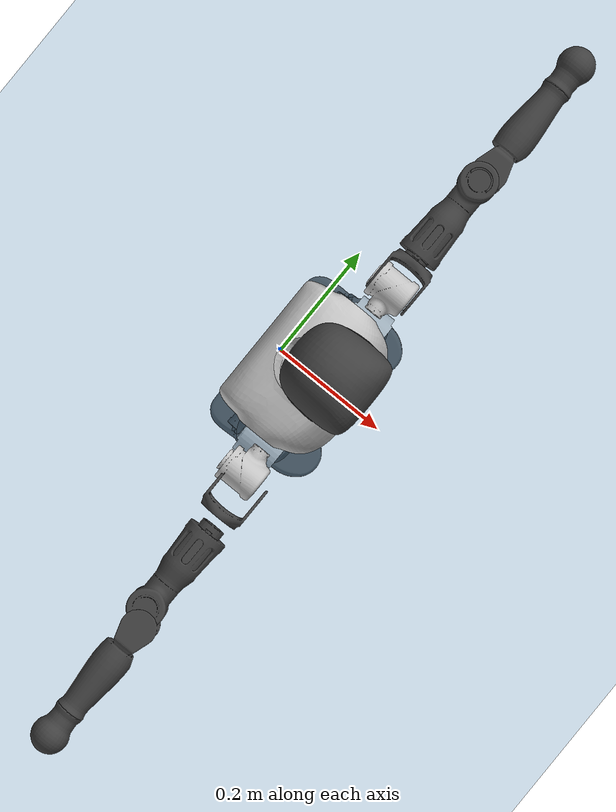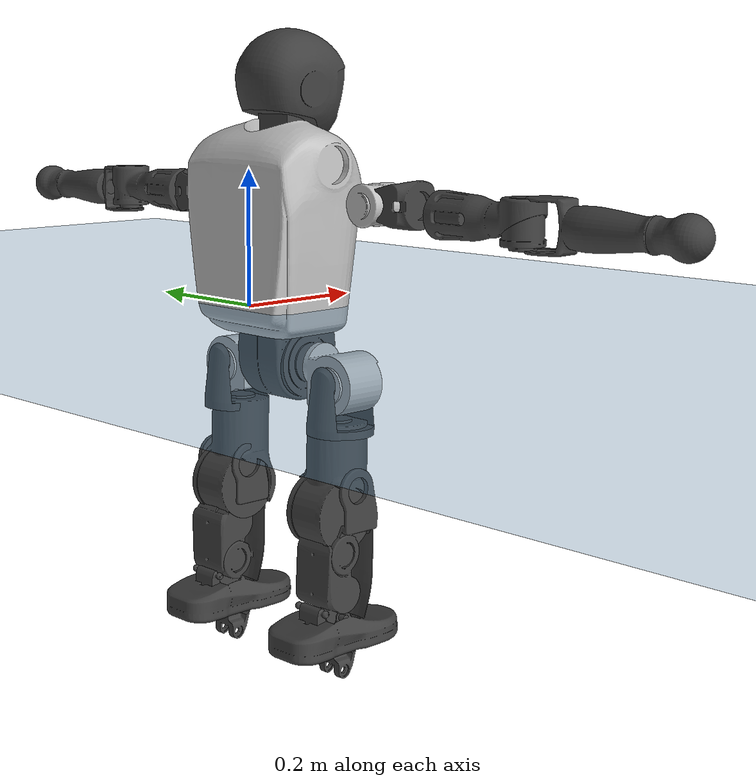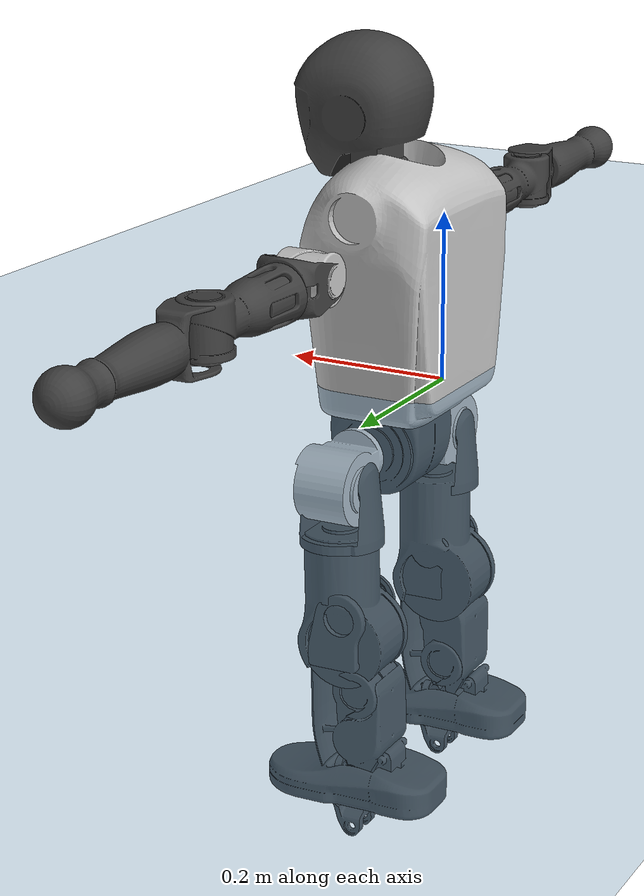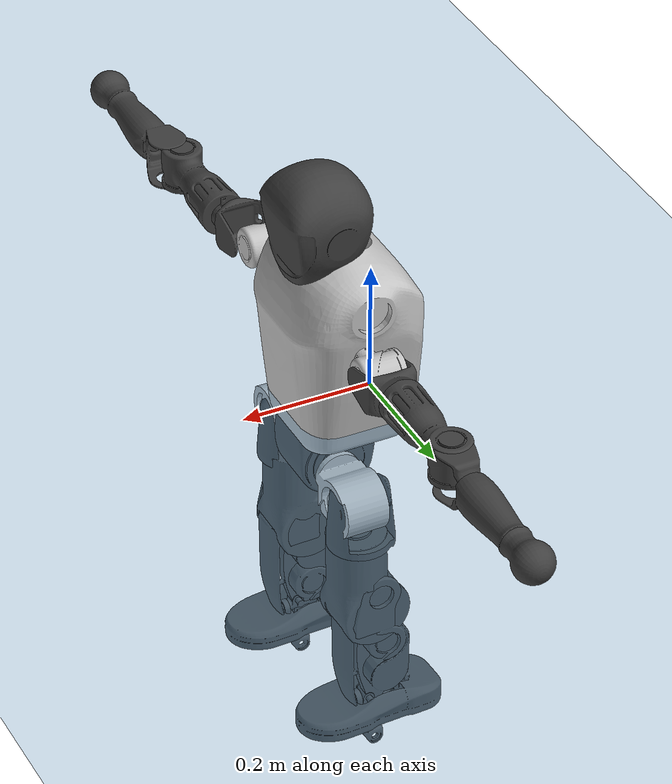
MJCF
<mujoco model="T1">
  <compiler angle="radian" assetdir="assets" balanceinertia="true" inertiafromgeom="false"/>

  <option timestep="0.005" density="1.2" viscosity="2e-05"/>

  <size nkey="1"/>

  <visual>
    <quality shadowsize="8192"/>
    <map shadowclip="0.5"/>
  </visual>

  <default>
    <default class="/">
      <joint armature="0.01" damping="0.01" frictionloss="0.1"/>
      <geom contype="0" conaffinity="0" group="1" solref="-1000 -80"/>
      <site size="0.01 0.005 0.005" group="5"/>
      <general forcelimited="true" biastype="affine" gainprm="25" biasprm="0 -25 -0.6"/>
      <default class="t1">
        <geom rgba="0.25 0.25 0.25 1"/>
        <default class="visual">
          <geom type="mesh" group="2"/>
        </default>
        <default class="collision">
          <geom group="3"/>
        </default>
        <default class="foot">
          <geom size="0.1115 0.05 0.015" type="box" condim="6" group="4" priority="1" solimp="0.015 1 0.015"/>
        </default>
        <default class="reward_collision_sphere">
          <geom group="5" rgba="1 0 0 1"/>
        </default>
      </default>
    </default>
  </default>

  <asset>
    <texture type="skybox" colorspace="auto" name="//unnamed_texture_0" builtin="gradient" rgb1="0.95 0.95 0.95" rgb2="0.95 0.95 0.95" width="100" height="600"/>
    <texture type="2d" colorspace="auto" name="texplane" builtin="checker" rgb1="0.345 0.575 0.748" rgb2="0.345 0.575 0.748" markrgb="1 1 1" width="512" height="512"/>
    <material name="MatPlane" class="/" texture="texplane" texuniform="true" texrepeat="2 2" specular="0.9"/>
    <mesh name="Trunk" class="/" file="Trunk.stl"/>
    <mesh name="H1" class="/" file="H1.stl"/>
    <mesh name="H2" class="/" file="H2.stl"/>
    <mesh name="AL1" class="/" file="AL1.stl"/>
    <mesh name="AL2" class="/" file="AL2.stl"/>
    <mesh name="AL3" class="/" file="AL3.stl"/>
    <mesh name="left_hand_link" class="/" file="left_hand_link.stl"/>
    <mesh name="AR1" class="/" file="AR1.stl"/>
    <mesh name="AR2" class="/" file="AR2.stl"/>
    <mesh name="AR3" class="/" file="AR3.stl"/>
    <mesh name="right_hand_link" class="/" file="right_hand_link.stl"/>
    <mesh name="Waist" class="/" file="Waist.stl"/>
    <mesh name="Hip_Pitch_Left" class="/" file="Hip_Pitch_Left.stl"/>
    <mesh name="Hip_Roll_Left" class="/" file="Hip_Roll_Left.stl"/>
    <mesh name="Hip_Yaw_Left" class="/" file="Hip_Yaw_Left.stl"/>
    <mesh name="Shank_Left" class="/" file="Shank_Left.stl"/>
    <mesh name="Ankle_Cross_Left" class="/" file="Ankle_Cross_Left.stl"/>
    <mesh name="left_foot_link" class="/" file="left_foot_link.stl"/>
    <mesh name="Hip_Pitch_Right" class="/" file="Hip_Pitch_Right.stl"/>
    <mesh name="Hip_Roll_Right" class="/" file="Hip_Roll_Right.stl"/>
    <mesh name="Hip_Yaw_Right" class="/" file="Hip_Yaw_Right.stl"/>
    <mesh name="Shank_Right" class="/" file="Shank_Right.stl"/>
    <mesh name="Ankle_Cross_Right" class="/" file="Ankle_Cross_Right.stl"/>
    <mesh name="right_foot_link" class="/" file="right_foot_link.stl"/>
  </asset>

  <worldbody>
    <geom name="floor" class="/" size="100 100 0.125" type="plane" group="0" material="MatPlane"/>
    <light name="toplight_shadow" class="/" pos="0 0 5" dir="0.0990148 0.0990148 -0.990148" type="directional" ambient="0.04 0.04 0.04" diffuse="0.55 0.55 0.55" specular="0.12 0.12 0.12"/>
    <light name="toplight_fill" class="/" pos="0 0 5" dir="0.0990148 0.0990148 -0.990148" type="directional" castshadow="false" ambient="0.04 0.04 0.04" diffuse="0.3 0.3 0.3" specular="0.08 0.08 0.08"/>
    <body name="trunk" childclass="t1" pos="-0.00107995 -0.000175802 -0.00893709" quat="1 -5.08834e-05 -1.99439e-05 -5.45862e-05">
      <inertial pos="0.0673182 -0.00259136 0.0809319" quat="0.999471 0.0115316 -0.0269642 -0.0140794" mass="14.8528" diaginertia="0.248207 0.197267 0.0140951"/>
      <joint name="//unnamed_joint_0" type="free" armature="0" damping="0" frictionloss="0"/>
      <geom name="//unnamed_geom_1" class="visual" rgba="0.76 0.76 0.76 1" mesh="Trunk"/>
      <geom name="//unnamed_geom_2" class="collision" size="0.0790297 0.105373 0.158059" pos="0.0723881 0 0.089279" type="box"/>
      <geom name="//unnamed_geom_3" class="reward_collision_sphere" size="0.121179" pos="0.0723881 0 0.0743991"/>
      <geom name="//unnamed_geom_4" class="reward_collision_sphere" size="0.0158059" pos="0.0723881 0.102912 0"/>
      <geom name="//unnamed_geom_5" class="reward_collision_sphere" size="0.0158059" pos="0.0723881 -0.102912 0"/>
      <geom name="//unnamed_geom_6" class="reward_collision_sphere" size="0.0158059" pos="0.0723881 0.129548 0.133918"/>
      <geom name="//unnamed_geom_7" class="reward_collision_sphere" size="0.0158059" pos="0.0723881 -0.129548 0.133918"/>
      <site name="imu" pos="-0.0623129 0.0518108 -0.0206992" size="0.0105373"/>
      <camera name="track" pos="0 -2.42146 0" quat="0.707107 0.707107 0 0" mode="trackcom"/>
      <camera name="ego_camera" pos="0.147189 0 0.312476" quat="-0.5 -0.5 0.5 0.5"/>
      <body name="H1" pos="0.0789633 0.00602894 0.177093" quat="0.999996 8.38383e-07 -0.00157884 -0.00246315">
        <inertial pos="-0.00265159 -0.000778608 0.0439978" quat="0.755909 -0.0141771 0.00562023 0.654499" mass="0.493266" diaginertia="0.000543328 0.000568211 2.91372e-05"/>
        <joint name="AAHead_yaw" pos="0 0 0" axis="0.00957048 -0.0013059 0.999953" range="-1.65168 1.439" armature="0.00933047" damping="0.00898879" frictionloss="0.117243"/>
        <geom name="//unnamed_geom_8" class="visual" mesh="H1"/>
        <body name="H2" pos="0.000496102 0.0109866 0.0458603" quat="1 -0.000481823 -0.000557865 -0.000114624">
          <inertial pos="-0.00347122 -0.0100146 0.0662063" quat="0.9875 0.109283 -0.0884912 -0.0712012" mass="0.634511" diaginertia="0.00504873 0.0052734 0.000401472"/>
          <joint name="Head_pitch" pos="0 0 0" axis="0.00950117 -0.999949 -0.00337498" range="-1.22461 0.20635" armature="0.0160585" damping="0.0349316" frictionloss="0.107198"/>
          <geom name="//unnamed_geom_9" class="visual" mesh="H2"/>
          <geom name="//unnamed_geom_10" class="collision" size="0.0842984" pos="0.0120647 0 0.081839"/>
          <geom name="//unnamed_geom_11" class="reward_collision_sphere" size="0.0948357" pos="0.0241294 0 0.0743991"/>
        </body>
      </body>
      <body name="AL1" pos="0.0780474 0.131752 0.164582" quat="0.999997 0.000515003 0.000691563 -0.00223912">
        <inertial pos="-0.00545529 0.0494061 -0.0111434" quat="0.508632 0.48396 -0.490942 0.515803" mass="0.645703" diaginertia="0.00360047 0.00343295 6.44146e-05"/>
        <joint name="Left_Shoulder_Pitch" pos="0 0 0" axis="-0.00638014 0.999906 -0.0121158" stiffness="0.0488096" range="-3.09612 1.36367" armature="0.0100129" damping="0.0124883" frictionloss="0.0996675"/>
        <geom name="//unnamed_geom_12" class="visual" rgba="0.76 0.76 0.76 1" mesh="AL1"/>
        <body name="AL2" pos="0.00140895 0.0462355 -0.00211818" quat="0.99998 0.00205305 -0.00496415 -0.00322451">
          <inertial pos="0.000201556 0.0443455 0.00857751" quat="0.489982 0.511344 -0.48784 0.51035" mass="0.134601" diaginertia="0.000873153 0.000686613 3.50429e-05"/>
          <joint name="Left_Shoulder_Roll" pos="0 0 0" axis="-0.997728 0.0614182 -0.0276993" stiffness="0.0271743" range="-1.43974 1.7778" armature="0.007781" damping="0.064875" frictionloss="0.123851"/>
          <geom name="//unnamed_geom_13" class="visual" mesh="AL2"/>
          <body name="AL3" pos="-0.00358106 0.062658 -0.00132843" quat="0.999979 -0.00192151 0.00520733 0.00345417">
            <inertial pos="0.000453452 0.10423 0.00112677" quat="0.705964 0.706688 -0.0346212 -0.0317426" mass="1.02586" diaginertia="0.0280214 0.029063 0.00012962"/>
            <joint name="Left_Elbow_Pitch" pos="0 0 0" axis="-0.00880076 -0.999955 0.00364616" range="-2.1771 2.29371" armature="0.0112179" damping="0.00747231" frictionloss="0.113744"/>
            <geom name="//unnamed_geom_14" class="visual" mesh="AL3"/>
            <geom name="//unnamed_geom_15" class="collision" size="0.0316119 0.0790297" pos="0 0.0605365 0" quat="0.707105 0.707108 0 0" type="cylinder"/>
            <geom name="//unnamed_geom_16" class="reward_collision_sphere" size="0.0379343"/>
            <body name="left_hand_link" pos="0.0042788 0.166025 -0.00687941" quat="0.999984 -0.00400928 0.000818869 0.00389482">
              <inertial pos="0.000615383 0.137259 0.0111825" quat="0.72747 0.684758 0.0198321 0.038738" mass="0.452396" diaginertia="0.0226177 0.0250432 6.06217e-05"/>
              <joint name="Left_Elbow_Yaw" pos="0 0 0" axis="-0.00290506 0.0486051 0.998814" stiffness="8.26858e-05" range="-2.40323 -0.177615" armature="0.0100675" damping="0.0402359" frictionloss="0.039766"/>
              <geom name="//unnamed_geom_17" class="visual" mesh="left_hand_link"/>
              <geom name="//unnamed_geom_18" class="collision" size="0.0316119 0.0922014" pos="0 0.157395 0" quat="0.707105 0.707108 0 0" type="cylinder"/>
              <geom name="//unnamed_geom_19" class="reward_collision_sphere" size="0.0526865"/>
              <geom name="//unnamed_geom_20" class="reward_collision_sphere" size="0.0368805" pos="0 0.13318 0"/>
              <geom name="//unnamed_geom_21" class="reward_collision_sphere" size="0.0368805" pos="0 0.260307 0"/>
            </body>
          </body>
        </body>
      </body>
      <body name="AR1" pos="0.0792115 -0.136449 0.164263" quat="1 -0.000208108 0.000555756 -0.00016082">
        <inertial pos="0.000318037 -0.0528772 0.000155943" quat="0.507289 0.493276 -0.502928 0.496388" mass="0.578733" diaginertia="0.00353401 0.00342867 6.53259e-05"/>
        <joint name="Right_Shoulder_Pitch" pos="0 0 0" axis="0.00927053 -0.99962 -0.0259505" range="-1.45186 3.31516" armature="0.00983304" damping="0" frictionloss="0.0988368"/>
        <geom name="//unnamed_geom_22" class="visual" rgba="0.76 0.76 0.76 1" mesh="AR1"/>
        <body name="AR2" pos="0.0111234 -0.0654605 0.00243285" quat="0.999997 0.000496291 -0.00091504 -0.0024289">
          <inertial pos="0.010748 -0.0499604 0.00798348" quat="0.485967 0.490372 -0.523802 0.499002" mass="0.177229" diaginertia="0.0011069 0.000991864 3.94018e-05"/>
          <joint name="Right_Shoulder_Roll" pos="0 0 0" axis="-0.999929 0.00789811 -0.0088875" range="-1.84841 1.79702" armature="0.0113775" damping="0.00430394" frictionloss="0.162584"/>
          <geom name="//unnamed_geom_23" class="visual" mesh="AR2"/>
          <body name="AR3" pos="0.00549953 -0.0855664 -0.0103961" quat="1 2.54259e-05 -2.88494e-06 5.2317e-05">
            <inertial pos="6.0828e-05 -0.101 0.000867784" quat="0.703124 0.708071 0.0590756 0.0276093" mass="1.29557" diaginertia="0.0357531 0.0308809 0.000147204"/>
            <joint name="Right_Elbow_Pitch" pos="0 0 0" axis="0.00039348 1 -0.000454359" range="-2.3006 2.23245" armature="0.0110158" damping="0" frictionloss="0.0443902"/>
            <geom name="//unnamed_geom_24" class="visual" mesh="AR3"/>
            <geom name="//unnamed_geom_25" class="collision" size="0.0316119 0.0790297" pos="0 -0.0605365 0" quat="0.707105 0.707108 0 0" type="cylinder"/>
            <geom name="//unnamed_geom_26" class="reward_collision_sphere" size="0.0379343"/>
            <body name="right_hand_link" pos="0.0102907 -0.177099 -0.0028565" quat="0.999996 -0.0008931 -0.00206249 -0.00162992">
              <inertial pos="-0.000827697 -0.131988 -0.0106295" quat="0.699168 0.713031 -0.0520885 -0.00607581" mass="0.436402" diaginertia="0.0261108 0.0248177 5.57669e-05"/>
              <joint name="Right_Elbow_Yaw" pos="0 0 0" axis="0.00179748 -0.00107624 0.999998" range="0.177643 2.41096" armature="0.00347407" damping="0.0241855" frictionloss="0.10584"/>
              <geom name="//unnamed_geom_27" class="visual" mesh="right_hand_link"/>
              <geom name="//unnamed_geom_28" class="collision" size="0.0316119 0.0922014" pos="0 -0.157395 0" quat="0.707105 0.707108 0 0" type="cylinder"/>
              <geom name="//unnamed_geom_29" class="reward_collision_sphere" size="0.0526865"/>
              <geom name="//unnamed_geom_30" class="reward_collision_sphere" size="0.0368805" pos="0 -0.13318 0"/>
              <geom name="//unnamed_geom_31" class="reward_collision_sphere" size="0.0368805" pos="0 -0.260307 0"/>
            </body>
          </body>
        </body>
      </body>
      <body name="Waist" pos="0.0713289 -0.00329511 -0.0771295" quat="1 -0.000267564 0.000150997 3.63305e-05">
        <inertial pos="-0.00859232 -0.000878762 0.00620129" quat="0.987175 -0.00265828 -0.159223 0.0112394" mass="3.05897" diaginertia="0.015175 0.0175326 0.0011921"/>
        <joint name="Waist" pos="0 0 0" axis="-0.0120594 -0.00673978 0.999905" range="-1.82299 1.48215" armature="0.0152605" damping="0.0104891" frictionloss="0.104068"/>
        <geom name="//unnamed_geom_32" class="visual" mesh="Waist"/>
        <body name="Hip_Pitch_Left" pos="0.011012 0.118075 -0.0031915" quat="0.999983 0.00325053 0.00445739 0.00189838">
          <inertial pos="0.00717387 -0.0211191 -0.015209" quat="0.973462 0.228133 0.0179423 0.00242012" mass="1.31878" diaginertia="0.00511248 0.00345175 0.000316483"/>
          <joint name="Left_Hip_Pitch" pos="0 0 0" axis="0.000737939 0.999985 -0.0054163" range="-1.79461 1.42873" armature="0.0106221" damping="0" frictionloss="0.105761"/>
          <geom name="//unnamed_geom_33" class="visual" rgba="0.76 0.76 0.76 1" mesh="Hip_Pitch_Left"/>
          <body name="Hip_Roll_Left" pos="-0.00599603 0.00127118 -0.0116583" quat="0.999987 0.0018677 0.00329897 0.00347179">
            <inertial pos="0.00182516 -0.00136962 -0.0375585" quat="0.709394 -0.00900553 -0.0122303 0.704649" mass="0.463175" diaginertia="0.00448333 0.00454644 0.000134467"/>
            <joint name="Left_Hip_Roll" pos="0 0 0" axis="-0.999993 -0.00240043 -0.00272914" stiffness="0.0315748" range="-1.61099 0.255021" armature="0.0110801" damping="0.00388972" frictionloss="0.058093"/>
            <geom name="//unnamed_geom_34" class="visual" mesh="Hip_Roll_Left"/>
            <geom name="//unnamed_geom_35" class="reward_collision_sphere" size="0.0579551"/>
            <body name="Hip_Yaw_Left" pos="0.00168471 -0.00563668 -0.0617748" quat="0.999994 -0.00203951 0.00140603 0.00235967">
              <inertial pos="-0.00910497 -0.00103352 -0.0667537" quat="0.663032 -0.0318193 0.00870306 0.747864" mass="2.70258" diaginertia="0.0656127 0.0763882 0.000550276"/>
              <joint name="Left_Hip_Yaw" pos="0 0 0" axis="0.0215858 0.0472391 -0.99865" range="-0.992743 1.0038" armature="0.010986" damping="0.0127856" frictionloss="0.106157"/>
              <geom name="//unnamed_geom_36" class="visual" mesh="Hip_Yaw_Left"/>
              <geom name="//unnamed_geom_37" class="collision" size="0.0526865 0.0842984" type="cylinder"/>
              <body name="Shank_Left" pos="-0.017472 0.00121315 -0.098506" quat="0.999996 0.00110384 -0.00248335 0.00108727">
                <inertial pos="-0.00833659 -0.00292937 -0.0946091" quat="0.995022 0.0389833 -0.0333911 0.0854191" mass="1.94038" diaginertia="0.0960354 0.0826793 0.000434841"/>
                <joint name="Left_Knee_Pitch" pos="0 0 0" axis="0.00102436 0.999911 0.0132694" range="-0.0775178 2.34276" armature="0.00893431" damping="0" frictionloss="0.0531445"/>
                <geom name="//unnamed_geom_38" class="visual" mesh="Shank_Left"/>
                <geom name="//unnamed_geom_39" class="collision" size="0.0526865 0.0790297" pos="0 0 -0.089279" type="cylinder"/>
                <geom name="//unnamed_geom_40" class="reward_collision_sphere" size="0.0684924"/>
                <body name="Ankle_Cross_Left" pos="0.00456274 -0.000446265 -0.211835" quat="0.999994 0.000674848 0.00287633 0.0015724">
                  <inertial pos="-0.00411899 -0.00550227 0.00676326" quat="0.452896 0.557861 0.538288 0.440366" mass="0.0734365" diaginertia="5.60823e-05 6.32441e-05 2.41703e-06"/>
                  <joint name="Left_Ankle_Pitch" pos="0 0 0" axis="0.011484 0.999564 0.0271919" range="-0.612226 0.222105" armature="0.0136109" damping="0" frictionloss="0.0511515"/>
                  <geom name="//unnamed_geom_41" class="visual" mesh="Ankle_Cross_Left"/>
                  <body name="left_foot_link" pos="-0.0105211 0.000648678 0.00218222" quat="0.999998 0.000462001 -0.000423965 0.00162085">
                    <inertial pos="0.00276677 0.0113134 -0.00834231" quat="-0.00269704 0.623439 -0.00538929 0.781849" mass="0.843001" diaginertia="0.00617119 0.00616364 0.000474584"/>
                    <joint name="Left_Ankle_Roll" pos="0 0 0" axis="-0.999886 -0.0116027 -0.00969369" range="-0.30284 0.523781" armature="0.0109374" damping="0.0222309" frictionloss="0.105311"/>
                    <geom name="//unnamed_geom_42" class="visual" mesh="left_foot_link"/>
                    <geom name="left_foot" class="foot" size="0.101052 0.0457131 0.0128664" pos="0.0120647 0 -0.0111599"/>
                    <geom name="//unnamed_geom_44" class="reward_collision_sphere" size="0.054794" pos="0.0120647 0 -0.0111599"/>
                    <geom name="//unnamed_geom_45" class="reward_collision_sphere" size="0.0316119" pos="0.114614 -0.0278468 -0.0111599"/>
                    <geom name="//unnamed_geom_46" class="reward_collision_sphere" size="0.0316119" pos="-0.0844527 -0.0278468 -0.0111599"/>
                    <site name="left_foot" class="foot" pos="0.0120647 0 -0.0111599" size="0.0105373"/>
                  </body>
                </body>
              </body>
            </body>
          </body>
        </body>
        <body name="Hip_Pitch_Right" pos="0.000436834 -0.126484 -0.000742452" quat="0.999995 -0.0025824 0.0014943 0.000698285">
          <inertial pos="0.00263314 0.00631241 -0.0246699" quat="0.974452 -0.219559 -0.0108167 -0.0460416" mass="1.15591" diaginertia="0.00448465 0.00365115 0.000245573"/>
          <joint name="Right_Hip_Pitch" pos="0 0 0" axis="0.0171145 -0.998954 -0.0424126" stiffness="0.0256746" range="-1.59624 1.77333" armature="0.00594099" damping="0.0161873" frictionloss="0.0734505"/>
          <geom name="//unnamed_geom_47" class="visual" rgba="0.76 0.76 0.76 1" mesh="Hip_Pitch_Right"/>
          <body name="Hip_Roll_Right" pos="-0.00182192 0.00544016 -0.0181712" quat="0.999979 0.00525126 0.00338014 -0.00143709">
            <inertial pos="-0.0110763 -0.00336436 -0.0323958" quat="0.714287 0.0297398 0.0195281 0.698948" mass="0.496145" diaginertia="0.00539149 0.00424057 0.000130904"/>
            <joint name="Right_Hip_Roll" pos="0 0 0" axis="-0.999948 -0.00656483 0.00783089" stiffness="0.0032054" range="-0.193221 1.38978" armature="0.0109231" damping="0" frictionloss="0.104302"/>
            <geom name="//unnamed_geom_48" class="visual" mesh="Hip_Roll_Right"/>
            <geom name="//unnamed_geom_49" class="reward_collision_sphere" size="0.0579551"/>
            <body name="Hip_Yaw_Right" pos="-0.000891485 0.00860962 -0.0593755" quat="0.999986 -0.0050057 -0.000785128 0.00181668">
              <inertial pos="-0.0152366 0.00088703 -0.0696576" quat="0.707516 -0.0555715 -0.0599359 0.701955" mass="2.10096" diaginertia="0.0494585 0.0479441 0.000479029"/>
              <joint name="Right_Hip_Yaw" pos="0 0 0" axis="0.00346604 0.0165762 -0.999857" range="-1.05224 1.25282" armature="0.00978697" damping="0.00394587" frictionloss="0.162689"/>
              <geom name="//unnamed_geom_50" class="visual" mesh="Hip_Yaw_Right"/>
              <geom name="//unnamed_geom_51" class="collision" size="0.0526865 0.0842984" type="cylinder"/>
              <body name="Shank_Right" pos="-0.00541277 -0.0075837 -0.0952495" quat="0.999986 0.00284671 0.00414554 0.00177833">
                <inertial pos="-0.0174339 -0.00607664 -0.0907544" quat="0.999268 -0.00623122 -0.0268 -0.0265815" mass="1.78004" diaginertia="0.0907036 0.10333 0.00050057"/>
                <joint name="Right_Knee_Pitch" pos="0 0 0" axis="0.00314038 -0.999982 0.0050561" range="-2.29071 -0.0223023" armature="0.0109179" damping="0" frictionloss="0.0812039"/>
                <geom name="//unnamed_geom_52" class="visual" mesh="Shank_Right"/>
                <geom name="//unnamed_geom_53" class="collision" size="0.0526865 0.0790297" pos="0 0 -0.089279" type="cylinder"/>
                <geom name="//unnamed_geom_54" class="reward_collision_sphere" size="0.0684924"/>
                <body name="Ankle_Cross_Right" pos="0.00100428 -0.000177461 -0.199989" quat="0.999987 0.00060689 -0.00117418 0.00500928">
                  <inertial pos="-0.00534772 0.000598864 -0.00651968" quat="0.460038 0.55462 0.538368 0.436947" mass="0.106114" diaginertia="8.10137e-05 7.38177e-05 2.84762e-06"/>
                  <joint name="Right_Ankle_Pitch" pos="0 0 0" axis="0.00604146 -0.997908 -0.0643599" range="-0.350923 1.02835" armature="0.00579278" damping="0.0423533" frictionloss="0.171944"/>
                  <geom name="//unnamed_geom_55" class="visual" mesh="Ankle_Cross_Right"/>
                  <body name="right_foot_link" pos="-0.00785435 0.000665197 -0.0126224" quat="0.999996 0.000580837 -0.00218773 0.00185484">
                    <inertial pos="-0.00262588 0.000317059 0.00320805" quat="0.00206384 0.619523 -0.000655711 0.784976" mass="0.668352" diaginertia="0.00715358 0.00588392 0.000502068"/>
                    <joint name="Right_Ankle_Roll" pos="0 0 0" axis="-0.998989 -0.0195622 0.0404797" range="-0.69673 0.336357" armature="0.0153928" damping="0.0120594" frictionloss="0.10724"/>
                    <geom name="//unnamed_geom_56" class="visual" mesh="right_foot_link"/>
                    <geom name="right_foot" class="foot" size="0.17018 0.0339704 0.0139385" pos="0.0120647 0 -0.0111599"/>
                    <geom name="//unnamed_geom_58" class="reward_collision_sphere" size="0.0421492"/>
                    <geom name="//unnamed_geom_59" class="reward_collision_sphere" size="0.0316119" pos="0.0120647 0 -0.0111599"/>
                    <geom name="//unnamed_geom_60" class="reward_collision_sphere" size="0.0316119" pos="0.114614 0.0278468 -0.0111599"/>
                    <geom name="//unnamed_geom_61" class="reward_collision_sphere" size="0.0316119" pos="-0.0844527 0.0278468 -0.0111599"/>
                    <site name="right_foot" class="foot" pos="0.0120647 0 -0.0111599" size="0.0105373"/>
                  </body>
                </body>
              </body>
            </body>
          </body>
        </body>
      </body>
    </body>
  </worldbody>

  <contact>
    <pair class="/" geom1="floor" geom2="left_foot" name="//unnamed_contact_0"/>
    <pair class="/" geom1="floor" geom2="right_foot" name="//unnamed_contact_1"/>
  </contact>

  <actuator>
    <general name="AAHead_yaw" class="/" joint="AAHead_yaw" forcerange="-8.79659 8.79659" gainprm="20.6062" biasprm="0 -20.6062 -0.576677"/>
    <general name="Head_pitch" class="/" joint="Head_pitch" forcerange="-7.32571 7.32571" gainprm="20.6062" biasprm="0 -20.6062 -0.576677"/>
    <general name="Left_Shoulder_Pitch" class="/" joint="Left_Shoulder_Pitch" forcerange="-17.4132 17.4132" gainprm="20.6062" biasprm="0 -20.6062 -0.576677"/>
    <general name="Left_Shoulder_Roll" class="/" joint="Left_Shoulder_Roll" forcerange="-17.8153 17.8153" gainprm="20.6062" biasprm="0 -20.6062 -0.576677"/>
    <general name="Left_Elbow_Pitch" class="/" joint="Left_Elbow_Pitch" forcerange="-12.1637 12.1637" gainprm="20.6062" biasprm="0 -20.6062 -0.576677"/>
    <general name="Left_Elbow_Yaw" class="/" joint="Left_Elbow_Yaw" forcerange="-19.7467 19.7467" gainprm="20.6062" biasprm="0 -20.6062 -0.576677"/>
    <general name="Right_Shoulder_Pitch" class="/" joint="Right_Shoulder_Pitch" forcerange="-20.0085 20.0085" gainprm="20.6062" biasprm="0 -20.6062 -0.576677"/>
    <general name="Right_Shoulder_Roll" class="/" joint="Right_Shoulder_Roll" forcerange="-19.3762 19.3762" gainprm="20.6062" biasprm="0 -20.6062 -0.576677"/>
    <general name="Right_Elbow_Pitch" class="/" joint="Right_Elbow_Pitch" forcerange="-20.9439 20.9439" gainprm="20.6062" biasprm="0 -20.6062 -0.576677"/>
    <general name="Right_Elbow_Yaw" class="/" joint="Right_Elbow_Yaw" forcerange="-11.8476 11.8476" gainprm="20.6062" biasprm="0 -20.6062 -0.576677"/>
    <general name="Waist" class="/" joint="Waist" forcerange="-26.1135 26.1135" gainprm="20.6062" biasprm="0 -20.6062 -0.576677"/>
    <general name="Left_Hip_Pitch" class="/" joint="Left_Hip_Pitch" forcerange="-69.8186 69.8186" gainprm="20.6062" biasprm="0 -20.6062 -0.576677"/>
    <general name="Left_Hip_Roll" class="/" joint="Left_Hip_Roll" forcerange="-30.0237 30.0237" gainprm="20.6062" biasprm="0 -20.6062 -0.576677"/>
    <general name="Left_Hip_Yaw" class="/" joint="Left_Hip_Yaw" forcerange="-28.0195 28.0195" gainprm="20.6062" biasprm="0 -20.6062 -0.576677"/>
    <general name="Left_Knee_Pitch" class="/" joint="Left_Knee_Pitch" forcerange="-38.962 38.962" gainprm="20.6062" biasprm="0 -20.6062 -0.576677"/>
    <general name="Left_Ankle_Pitch" class="/" joint="Left_Ankle_Pitch" forcerange="-20.3658 20.3658" gainprm="20.6062" biasprm="0 -20.6062 -0.576677"/>
    <general name="Left_Ankle_Roll" class="/" joint="Left_Ankle_Roll" forcerange="-15.036 15.036" gainprm="20.6062" biasprm="0 -20.6062 -0.576677"/>
    <general name="Right_Hip_Pitch" class="/" joint="Right_Hip_Pitch" forcerange="-26.9244 26.9244" gainprm="20.6062" biasprm="0 -20.6062 -0.576677"/>
    <general name="Right_Hip_Roll" class="/" joint="Right_Hip_Roll" forcerange="-29.5309 29.5309" gainprm="20.6062" biasprm="0 -20.6062 -0.576677"/>
    <general name="Right_Hip_Yaw" class="/" joint="Right_Hip_Yaw" forcerange="-28.076 28.076" gainprm="20.6062" biasprm="0 -20.6062 -0.576677"/>
    <general name="Right_Knee_Pitch" class="/" joint="Right_Knee_Pitch" forcerange="-46.6453 46.6453" gainprm="20.6062" biasprm="0 -20.6062 -0.576677"/>
    <general name="Right_Ankle_Pitch" class="/" joint="Right_Ankle_Pitch" forcerange="-24.9135 24.9135" gainprm="20.6062" biasprm="0 -20.6062 -0.576677"/>
    <general name="Right_Ankle_Roll" class="/" joint="Right_Ankle_Roll" forcerange="-22.6707 22.6707" gainprm="20.6062" biasprm="0 -20.6062 -0.576677"/>
  </actuator>

  <sensor>
    <gyro site="imu" name="imu_angular_velocity"/>
    <velocimeter site="imu" name="imu_linear_velocity"/>
    <framelinvel objtype="site" objname="left_foot" name="left_foot_global_linear_velocity"/>
    <framelinvel objtype="site" objname="right_foot" name="right_foot_global_linear_velocity"/>
  </sensor>

  <keyframe>
    <key name="home" qpos="0 0 0.6385 1 0 0 0 0 0 0 1.4 0 -0.4 0 -1.4 0 0.4 0 -0.4 0 0 0.8 -0.4 0 0.4 0 0 -0.8 0.4 0"/>
  </keyframe>
</mujoco>
